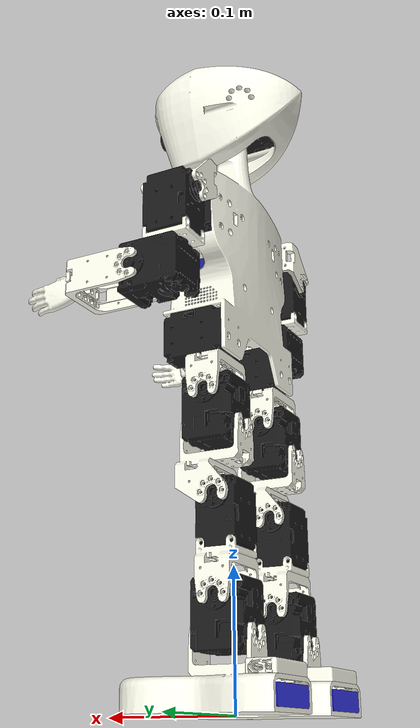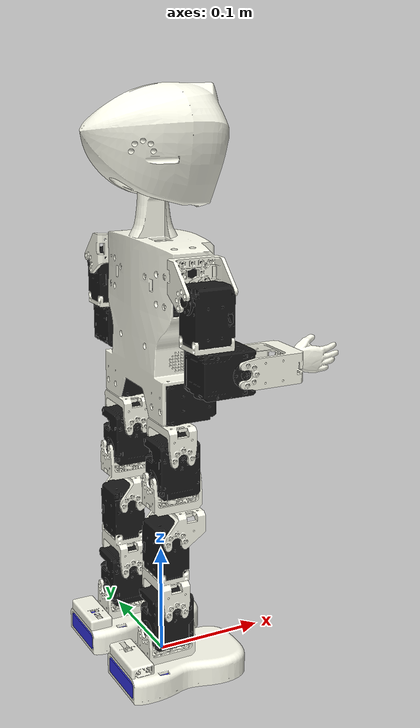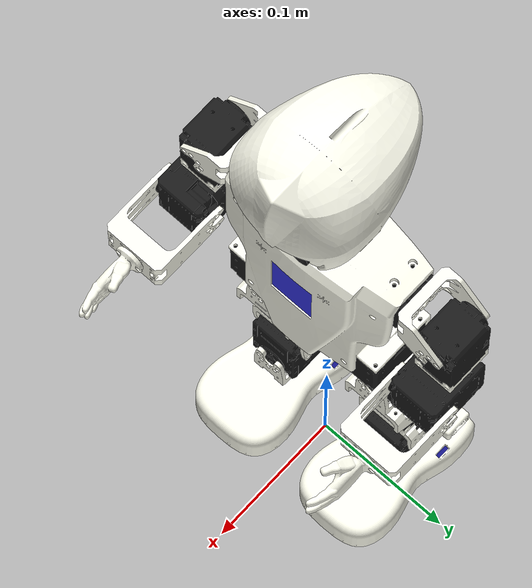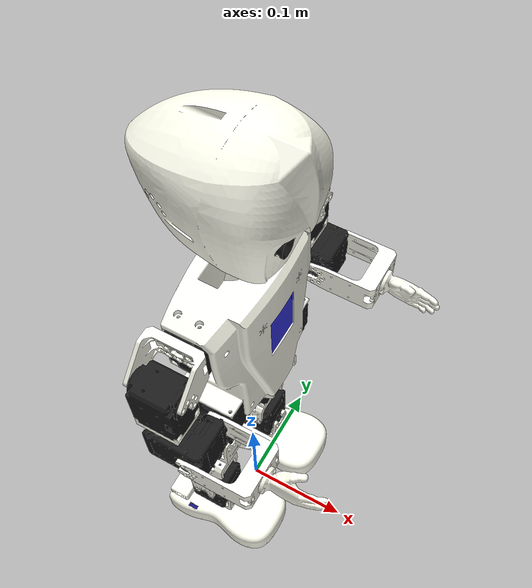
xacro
<?xml version="1.0" ?>
<robot xmlns:xacro="http://ros.org/wiki/xacro" name="mh5_robot">

    <xacro:include filename="$(find mh5_description)/urdf/mh5_arm.xacro"/>
    <xacro:include filename="$(find mh5_description)/urdf/mh5_leg.xacro"/>
    <xacro:include filename="$(find mh5_description)/urdf/mh5_head.xacro"/>

    <xacro:macro name="material_ivory">
        <material name="ivory">
            <color rgba="1 1 0.94 1"/>
        </material>
    </xacro:macro>

    <xacro:macro name="material_black">
        <material name="black">
            <color rgba="0.1 0.1 0.1 1"/>
        </material>
    </xacro:macro>

   <link name="base_link"/>

    <link name="chest">
        <visual>
            <origin rpy="0.0 0 ${pi/2}" xyz="0 0 0"/>
            <geometry>
                <mesh filename="package://mh5_description/meshes/chest.stl"/>
            </geometry>
            <xacro:material_ivory/>
        </visual>
    </link>

    <joint name="chest_fixed" type="fixed">
        <parent link="base_link"/>
        <child link="chest"/>
        <origin xyz="0 0 0.27225" rpy="0 0 0"/>
    </joint>

    <link name="screen">
        <visual>
            <origin rpy="${-pi/2} 0 ${-pi/2}" xyz="0 0 0"/>
            <geometry>
                <mesh filename="package://mh5_description/meshes/screen.stl"/>
            </geometry>
            <material name="blue">
                <color rgba="0.2 0.2 0.9 1"/>
            </material>
        </visual>
    </link>

    <joint name="screen_fixed" type="fixed">
        <parent link="chest"/>
        <child link="screen"/>
        <origin xyz="0.02935 0 0.05426" rpy="0 0 0"/>
    </joint>

    <xacro:mh5_head parent="chest"/>
    <xacro:mh5_arm side="left" parent="chest"/>
    <xacro:mh5_arm side="right" parent="chest"/>
    <xacro:mh5_leg side="left" parent="chest"/>
    <xacro:mh5_leg side="right" parent="chest"/>

</robot>

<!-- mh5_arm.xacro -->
<robot xmlns:xacro="http://ros.org/wiki/xacro">

    <xacro:macro name="mh5_arm" params="side parent">

        <xacro:property name="short_side" value="${side[0]}"/>
        <xacro:if value="${short_side == 'l'}">
            <xacro:property name="factor" value = "1.0"/>
        </xacro:if>
        <xacro:if value="${short_side == 'r'}">
            <xacro:property name="factor" value = "-1.0"/>
        </xacro:if>

        <link name="${side}_shoulder_servo">
            <visual>
                <origin rpy="0 0 0" xyz="0 0 0"/>
                <geometry>
                    <mesh filename="package://mh5_description/meshes/xl430_no_idle.stl"/>
                </geometry>
                <xacro:material_black/>
            </visual>
        </link>

        <joint name="${side}_shoulder_fixed" type="fixed">
            <parent link="${parent}"/>
            <child link="${side}_shoulder_servo"/>
            <origin xyz="-0.003 ${factor*0.048} 0.09175" rpy="${pi/2} 0 ${pi/2 + factor*pi/2}"/>
        </joint>

        <link name="${side}_shoulder_frame">
            <visual>
                <origin rpy="0 0 ${-pi/2 + factor*pi/2}" xyz="0 ${-factor*0.016} -0.027"/>
                <geometry>
                    <mesh filename="package://mh5_description/meshes/frame01.stl"/>
                </geometry>
                <material name="ivory"/>
            </visual>
        </link>

        <joint name="${short_side}_sho_p" type="revolute">
            <axis xyz="0 0 ${factor}"/>
            <parent link="${side}_shoulder_servo"/>
            <child link="${side}_shoulder_frame"/>
            <origin xyz="0 0 0.019" rpy="0 ${pi} ${pi/2 - factor*pi/2}"/>
            <limit lower="-3.1416" upper="3.1416" effort="1000" velocity="100"/>
        </joint>

        <link name="${side}_arm_servo">
            <visual>
                <origin rpy="0 0 0" xyz="0 0 0"/>
                <geometry>
                    <mesh filename="package://mh5_description/meshes/xl430_with_idle.stl"/>
                </geometry>
                <material name="black"/>
            </visual>
        </link>

        <joint name="${short_side}_sho_r" type="revolute">
            <axis xyz="0 0 1"/>
            <parent link="${side}_shoulder_frame"/>
            <child link="${side}_arm_servo"/>
            <origin xyz="0 ${-factor*0.016} -0.027" rpy="0 ${pi/2} ${pi/2 - factor*pi/2}"/>
            <limit lower="-3.1416" upper="3.1416" effort="1000" velocity="100"/>
        </joint>

        <link name="${side}_arm_frame">
            <visual>
                <origin rpy="0 0 0" xyz="0 0 0"/>
                <geometry>
                    <mesh filename="package://mh5_description/meshes/frame03.stl"/>
                </geometry>
                <material name="ivory"/>
            </visual>
        </link>

        <joint name="${side}_arm_fixed" type="fixed">
            <parent link="${side}_arm_servo"/>
            <child link="${side}_arm_frame"/>
            <origin xyz="0 -0.03675 0" rpy="0 ${pi/2} 0"/>
        </joint>

        <link name="${side}_elbow_servo">
            <visual>
                <origin rpy="0 0 0" xyz="0 0.012 0"/>
                <geometry>
                    <mesh filename="package://mh5_description/meshes/2xl430_1_idle.stl"/>
                </geometry>
                <material name="black"/>
            </visual>
        </link>

        <joint name="${short_side}_elb_y" type="revolute">
            <axis xyz="1 0 0"/>
            <parent link="${side}_arm_frame"/>
            <child link="${side}_elbow_servo"/>
            <origin xyz="0 -0.0213 0" rpy="0 0 ${factor*pi/2}"/>
            <limit lower="-3.1416" upper="3.1416" effort="1000" velocity="100"/>
        </joint>

        <link name="${side}_forearm">
            <visual>
                <origin rpy="${pi} 0 ${pi/2-factor*pi/2}" xyz="0 0 0"/>
                <geometry>
                    <mesh filename="package://mh5_description/meshes/frame04.stl"/>
                </geometry>
                <material name="ivory"/>
            </visual>
        </link>

        <joint name="${short_side}_elb_p" type="revolute">
            <axis xyz="${-factor} 0 0"/>
            <parent link="${side}_elbow_servo"/>
            <child link="${side}_forearm"/>
            <origin xyz="0 0.024 0" rpy="0 -${pi/2} ${pi/2}"/>
            <limit lower="-3.1416" upper="3.1416" effort="1000" velocity="100"/>
        </joint>

        <xacro:if value="${short_side == 'l'}">
            <xacro:property name="hand_stl" value = "package://mh5_description/meshes/left_hand.stl"/>
        </xacro:if>
        <xacro:if value="${short_side == 'r'}">
            <xacro:property name="hand_stl" value = "package://mh5_description/meshes/right_hand.stl"/>
        </xacro:if>

        <link name="${side}_hand">
            <visual>
                <origin rpy="0 0 ${-factor*pi/2}" xyz="-0.0195 ${factor*0.01254} -0.0042"/>
                <geometry>
                    <mesh filename="${hand_stl}"/>
                </geometry>
                <material name="ivory"/>
            </visual>
        </link>

        <joint name="${side}_hand_fixed" type="fixed">
            <parent link="${side}_forearm"/>
            <child link="${side}_hand"/>
            <origin xyz="0 0 -0.052" rpy="0 0 0"/>
        </joint>

    </xacro:macro>

</robot>

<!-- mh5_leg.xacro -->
<robot xmlns:xacro="http://ros.org/wiki/xacro">

    <xacro:macro name="mh5_leg" params="side parent">

        <xacro:property name="short_side" value="${side[0]}"/>
        <xacro:if value="${short_side == 'l'}">
            <xacro:property name="factor" value = "1.0"/>
        </xacro:if>
        <xacro:if value="${short_side == 'r'}">
            <xacro:property name="factor" value = "-1.0"/>
        </xacro:if>

        <link name="${side}_hipy_servo">
            <visual>
                <origin rpy="0 ${pi} ${pi/2}" xyz="0 0 0"/>
                <geometry>
                    <mesh filename="package://mh5_description/meshes/xl430_no_idle.stl"/>
                </geometry>
                <xacro:material_black/>
            </visual>
        </link>

        <joint name="${side}_hipy_fixed" type="fixed">
            <parent link="${parent}"/>
            <child link="${side}_hipy_servo"/>
            <origin xyz="-0.0105 ${factor*0.04575} -0.017" rpy="0 0 0"/>
        </joint>

        <link name="${side}_hip_frame">
            <visual>
                <origin rpy="0 0 ${factor*pi/2}" xyz="0 0 -0.045"/>
                <geometry>
                    <mesh filename="package://mh5_description/meshes/frame02.stl"/>
                </geometry>
                <material name="ivory"/>
            </visual>
        </link>

        <joint name="${short_side}_hip_y" type="revolute">
            <axis xyz="0 0 ${factor}"/>
            <parent link="${side}_hipy_servo"/>
            <child link="${side}_hip_frame"/>
            <origin xyz="0 0 0" rpy="0 0 0"/>
            <limit lower="-3.1416" upper="3.1416" effort="1000" velocity="100"/>
        </joint>

        <link name="${side}_hip_servo">
            <visual>
                <origin rpy="${pi/2} 0 0" xyz="0 0 -0.012"/>
                <geometry>
                    <mesh filename="package://mh5_description/meshes/2xl430_2_idles.stl"/>
                </geometry>
                <material name="black"/>
            </visual>
        </link>

        <joint name="${short_side}_hip_p" type="revolute">
            <axis xyz="0 -1 0"/>
            <parent link="${side}_hip_frame"/>
            <child link="${side}_hip_servo"/>
            <origin xyz="0 0 -0.045" rpy="0 0 0"/>
            <limit lower="-3.1416" upper="3.1416" effort="1000" velocity="100"/>
        </joint>

        <link name="${side}_thigh_frame">
            <visual>
                <origin rpy="0 0 ${pi/2}" xyz="0 0 0"/>
                <geometry>
                    <mesh filename="package://mh5_description/meshes/thigh.stl"/>
                </geometry>
                <material name="ivory"/>
            </visual>
        </link>

        <joint name="${short_side}_hip_r" type="revolute">
            <axis xyz="${factor} 0 0"/>
            <parent link="${side}_hip_servo"/>
            <child link="${side}_thigh_frame"/>
            <origin xyz="0 0 -0.024" rpy="0 0 0"/>
            <limit lower="-3.1416" upper="3.1416" effort="1000" velocity="100"/>
        </joint>

        <link name="${side}_knee_servo">
            <visual>
                <origin rpy="${pi/2} 0 0" xyz="0 0 0"/>
                <geometry>
                    <mesh filename="package://mh5_description/meshes/xl430_with_idle.stl"/>
                </geometry>
                <material name="black"/>
            </visual>
        </link>

        <joint name="${short_side}_kne_p" type="revolute">
            <axis xyz="0 1 0"/>
            <parent link="${side}_thigh_frame"/>
            <child link="${side}_knee_servo"/>
            <origin xyz="-0.0065 0 -0.049" rpy="0 0 0"/>
            <limit lower="-3.1416" upper="3.1416" effort="1000" velocity="100"/>
        </joint>

        <link name="${side}_calf_frame">
            <visual>
                <origin rpy="0 0 ${pi/2}" xyz="0 0 0"/>
                <geometry>
                    <mesh filename="package://mh5_description/meshes/calf.stl"/>
                </geometry>
                <material name="ivory"/>
            </visual>
        </link>

        <joint name="${side}_calf_fixed" type="fixed">
            <parent link="${side}_knee_servo"/>
            <child link="${side}_calf_frame"/>
            <origin xyz="0 0 -0.032" rpy="0 0 0"/>
        </joint>

        <link name="${side}_ankle_servo">
            <visual>
                <origin rpy="${pi/2} 0 0" xyz="0 0 -0.012"/>
                <geometry>
                    <mesh filename="package://mh5_description/meshes/2xl430_2_idles.stl"/>
                </geometry>
                <material name="black"/>
            </visual>
        </link>

        <joint name="${short_side}_ank_p" type="revolute">
            <axis xyz="0 -1 0"/>
            <parent link="${side}_calf_frame"/>
            <child link="${side}_ankle_servo"/>
            <origin xyz="0 0 -0.03325" rpy="0 0 0"/>
            <limit lower="-3.1416" upper="3.1416" effort="1000" velocity="100"/>
        </joint>

        <link name="${side}_foot">
            <visual>
                <origin rpy="0 0 ${pi/2}" xyz="0 0 0"/>
                <geometry>
                    <mesh filename="package://mh5_description/meshes/foot.stl"/>
                </geometry>
                <material name="ivory"/>
            </visual>
        </link>

        <joint name="${short_side}_ank_r" type="revolute">
            <axis xyz="${factor} 0 0"/>
            <parent link="${side}_ankle_servo"/>
            <child link="${side}_foot"/>
            <origin xyz="0 0 -0.024" rpy="0 0 0"/>
            <limit lower="-3.1416" upper="3.1416" effort="1000" velocity="100"/>
        </joint>

        <link name="${side}_hot_swap">
            <visual>
                <origin rpy="0 0 ${-factor*pi/2}" xyz="0 0 0"/>
                <geometry>
                    <mesh filename="package://mh5_description/meshes/hot_swap.stl"/>
                </geometry>
                <material name="ivory"/>
            </visual>
        </link>

        <joint name="${side}_hs_fixed" type="fixed">
            <parent link="${side}_foot"/>
            <child link="${side}_hot_swap"/>
            <origin xyz="-0.0335 0 -0.026" rpy="0 0 0"/>
        </joint>

        <link name="${side}_battery">
            <visual>
                <origin rpy="0 0 ${-pi/2}" xyz="0 0 0"/>
                <geometry>
                    <mesh filename="package://mh5_description/meshes/battery.stl"/>
                </geometry>
                <material name="blue">
                    <color rgba="0.2 0.2 0.9 1"/>
                </material>
            </visual>
        </link>

        <joint name="${side}_battery_fixed" type="fixed">
            <parent link="${side}_foot"/>
            <child link="${side}_battery"/>
            <origin xyz="0.009 0 -0.045" rpy="0 0 0"/>
        </joint>

    </xacro:macro>

</robot>

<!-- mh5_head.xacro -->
<robot xmlns:xacro="http://ros.org/wiki/xacro">

    <xacro:macro name="mh5_head" params="parent">

        <link name="head_servo">
            <visual>
                <origin rpy="0 ${pi/2} ${pi/2}" xyz="-0.012 0 0"/>
                <geometry>
                    <mesh filename="package://mh5_description/meshes/2xl430_1_idle.stl"/>
                </geometry>
                <xacro:material_black/>
            </visual>
        </link>

        <joint name="head_y" type="revolute">
            <axis xyz="0 0 1"/>
            <parent link="${parent}"/>
            <child link="head_servo"/>
            <origin xyz="-0.004075 0 0.183" rpy="0 0 0"/>
            <limit lower="-3.1416" upper="3.1416" effort="1000" velocity="100"/>
        </joint>

        <link name="head_frame">
            <visual>
                <origin rpy="0 0 ${pi/2}" xyz="0 0 0"/>
                <geometry>
                    <mesh filename="package://mh5_description/meshes/head.stl"/>
                </geometry>
                <xacro:material_ivory/>
            </visual>
        </link>

        <joint name="head_p" type="revolute">
            <axis xyz="0 -1 0"/>
            <parent link="head_servo"/>
            <child link="head_frame"/>
            <origin xyz="-0.024 0 0" rpy="0 0 0"/>
            <limit lower="-3.1416" upper="3.1416" effort="1000" velocity="100"/>
        </joint>

        <link name="left_camera">
            <visual>
                <origin rpy="0 0 ${pi/2}" xyz="0 0 0"/>
                <geometry>
                    <mesh filename="package://mh5_description/meshes/camera.stl"/>
                </geometry>
                <xacro:material_black/>
            </visual>
        </link>

        <joint name="left_camera_fixed" type="fixed">
            <parent link="head_frame"/>
            <child link="left_camera"/>
            <origin xyz="0.06435 0.018 -0.009347" rpy="0 0 0"/>
        </joint>

        <link name="right_camera">
            <visual>
                <origin rpy="0 0 ${pi/2}" xyz="0 0 0"/>
                <geometry>
                    <mesh filename="package://mh5_description/meshes/camera.stl"/>
                </geometry>
                <xacro:material_black/>
            </visual>
        </link>

        <joint name="right_camera_fixed" type="fixed">
            <parent link="head_frame"/>
            <child link="right_camera"/>
            <origin xyz="0.06435 -0.018 -0.009347" rpy="0 0 0"/>
        </joint>

    </xacro:macro>

</robot>
